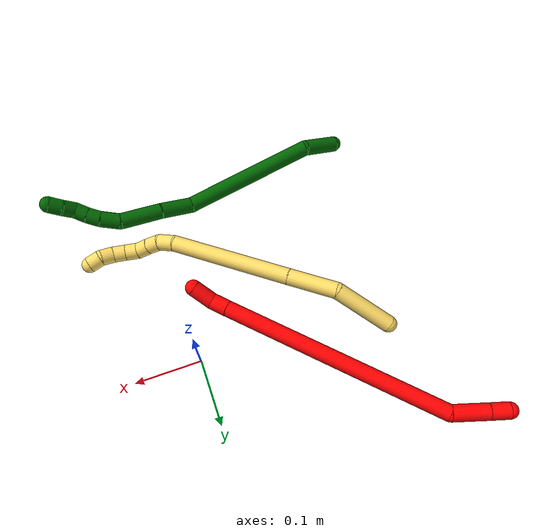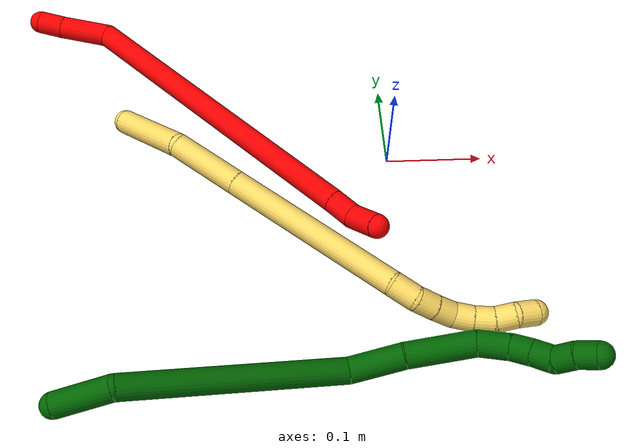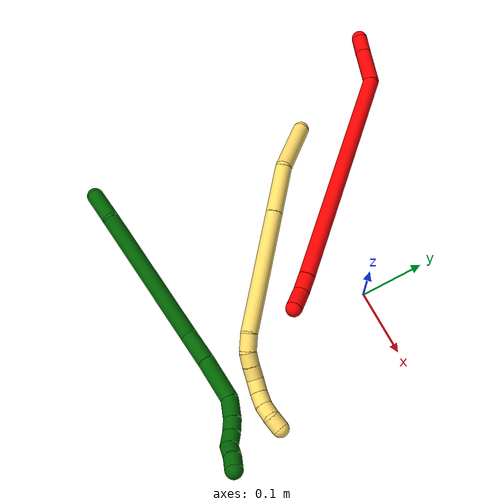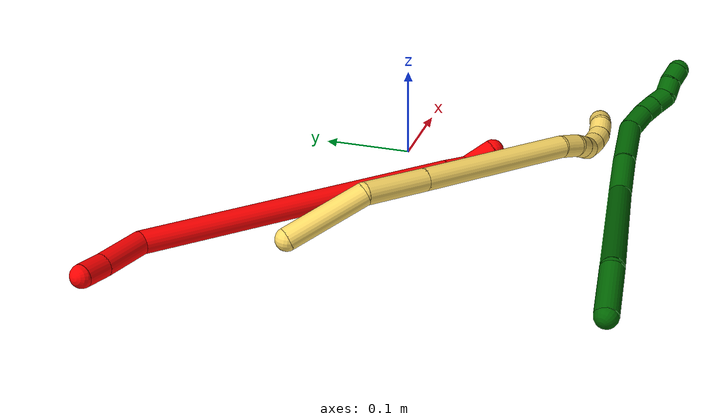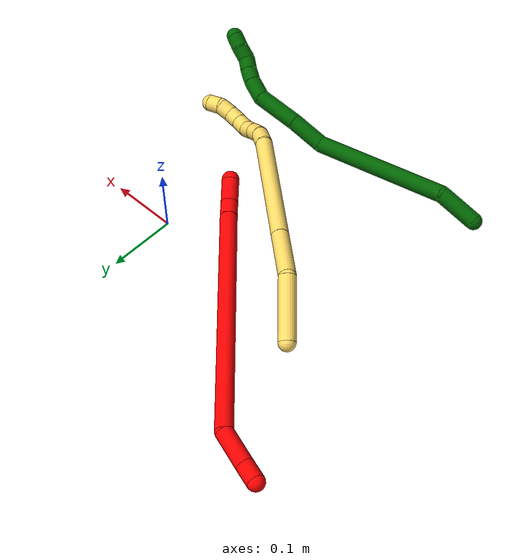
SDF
<sdf version="1.7">
 <world name="default">
  <model name="2">
   <static>0</static>
   <link name="2">
    <collision name="collision-cylinder-e_1_1_4">
     <pose>0.003169 0.000118 -0.013701 -3.133 0.227264 -3.06637</pose>
     <geometry><cylinder><radius>0.0125</radius><length>0.028126</length></cylinder></geometry>
     <surface>
      <friction><ode><mu>1.16</mu><mu2>1.16</mu2><slip1>0</slip1><slip2>0</slip2></ode></friction>
      <contact><ode><kp>1e+06</kp><kd>1</kd><max_vel>0</max_vel><min_depth>0.001</min_depth></ode></contact>
     </surface>
    </collision>
    <visual name="visual-cylinder-e_1_1_4">
     <pose>0.003169 0.000118 -0.013701 -3.133 0.227264 -3.06637</pose>
     <geometry><cylinder><radius>0.0125</radius><length>0.028126</length></cylinder></geometry>
     <material><ambient>1 0 0 1</ambient></material>
    </visual>
    <collision name="collision-cylinder-e_2_4_5">
     <pose>0.014129 0.001099 -0.053923 -3.10905 0.285614 -2.91617</pose>
     <geometry><cylinder><radius>0.0125</radius><length>0.055311</length></cylinder></geometry>
     <surface>
      <friction><ode><mu>1.16</mu><mu2>1.16</mu2><slip1>0</slip1><slip2>0</slip2></ode></friction>
      <contact><ode><kp>1e+06</kp><kd>1</kd><max_vel>0</max_vel><min_depth>0.001</min_depth></ode></contact>
     </surface>
    </collision>
    <visual name="visual-cylinder-e_2_4_5">
     <pose>0.014129 0.001099 -0.053923 -3.10905 0.285614 -2.91617</pose>
     <geometry><cylinder><radius>0.0125</radius><length>0.055311</length></cylinder></geometry>
     <material><ambient>1 0 0 1</ambient></material>
    </visual>
    <collision name="collision-cylinder-e_3_5_6">
     <pose>0.091714 -0.075022 -0.223837 2.64888 0.405112 1.36969</pose>
     <geometry><cylinder><radius>0.0125</radius><length>0.35417</length></cylinder></geometry>
     <surface>
      <friction><ode><mu>1.16</mu><mu2>1.16</mu2><slip1>0</slip1><slip2>0</slip2></ode></friction>
      <contact><ode><kp>1e+06</kp><kd>1</kd><max_vel>0</max_vel><min_depth>0.001</min_depth></ode></contact>
     </surface>
    </collision>
    <visual name="visual-cylinder-e_3_5_6">
     <pose>0.091714 -0.075022 -0.223837 2.64888 0.405112 1.36969</pose>
     <geometry><cylinder><radius>0.0125</radius><length>0.35417</length></cylinder></geometry>
     <material><ambient>1 0 0 1</ambient></material>
    </visual>
    <collision name="collision-cylinder-e_4_6_7">
     <pose>0.16664 -0.158325 -0.378242 2.62062 0.384217 1.26081</pose>
     <geometry><cylinder><radius>0.0125</radius><length>0.027388</length></cylinder></geometry>
     <surface>
      <friction><ode><mu>1.16</mu><mu2>1.16</mu2><slip1>0</slip1><slip2>0</slip2></ode></friction>
      <contact><ode><kp>1e+06</kp><kd>1</kd><max_vel>0</max_vel><min_depth>0.001</min_depth></ode></contact>
     </surface>
    </collision>
    <visual name="visual-cylinder-e_4_6_7">
     <pose>0.16664 -0.158325 -0.378242 2.62062 0.384217 1.26081</pose>
     <geometry><cylinder><radius>0.0125</radius><length>0.027388</length></cylinder></geometry>
     <material><ambient>1 0 0 1</ambient></material>
    </visual>
    <collision name="collision-cylinder-e_5_7_2">
     <pose>0.184693 -0.169952 -0.399799 2.67531 0.830397 2.15339</pose>
     <geometry><cylinder><radius>0.0125</radius><length>0.035004</length></cylinder></geometry>
     <surface>
      <friction><ode><mu>1.16</mu><mu2>1.16</mu2><slip1>0</slip1><slip2>0</slip2></ode></friction>
      <contact><ode><kp>1e+06</kp><kd>1</kd><max_vel>0</max_vel><min_depth>0.001</min_depth></ode></contact>
     </surface>
    </collision>
    <visual name="visual-cylinder-e_5_7_2">
     <pose>0.184693 -0.169952 -0.399799 2.67531 0.830397 2.15339</pose>
     <geometry><cylinder><radius>0.0125</radius><length>0.035004</length></cylinder></geometry>
     <material><ambient>1 0 0 1</ambient></material>
    </visual>
    <collision name="collision-sphere-2">
     <pose>0.197613 -0.17526 -0.410345 0 -0 0</pose>
     <geometry><sphere><radius>0.0125</radius></sphere></geometry>
     <surface>
      <friction><ode><mu>1.16</mu><mu2>1.16</mu2><slip1>0</slip1><slip2>0</slip2></ode></friction>
      <contact><ode><kp>1e+06</kp><kd>1</kd><max_vel>0</max_vel><min_depth>0.001</min_depth></ode></contact>
     </surface>
    </collision>
    <visual name="visual-sphere-2">
     <pose>0.197613 -0.17526 -0.410345 0 -0 0</pose>
     <geometry><sphere><radius>0.0125</radius></sphere></geometry>
     <material><ambient>1 0 0 1</ambient></material>
    </visual>
    <collision name="collision-sphere-7">
     <pose>0.171773 -0.164644 -0.389253 0 -0 0</pose>
     <geometry><sphere><radius>0.0125</radius></sphere></geometry>
     <surface>
      <friction><ode><mu>1.16</mu><mu2>1.16</mu2><slip1>0</slip1><slip2>0</slip2></ode></friction>
      <contact><ode><kp>1e+06</kp><kd>1</kd><max_vel>0</max_vel><min_depth>0.001</min_depth></ode></contact>
     </surface>
    </collision>
    <visual name="visual-sphere-7">
     <pose>0.171773 -0.164644 -0.389253 0 -0 0</pose>
     <geometry><sphere><radius>0.0125</radius></sphere></geometry>
     <material><ambient>1 0 0 1</ambient></material>
    </visual>
    <collision name="collision-sphere-6">
     <pose>0.161507 -0.152006 -0.36723 0 -0 0</pose>
     <geometry><sphere><radius>0.0125</radius></sphere></geometry>
     <surface>
      <friction><ode><mu>1.16</mu><mu2>1.16</mu2><slip1>0</slip1><slip2>0</slip2></ode></friction>
      <contact><ode><kp>1e+06</kp><kd>1</kd><max_vel>0</max_vel><min_depth>0.001</min_depth></ode></contact>
     </surface>
    </collision>
    <visual name="visual-sphere-6">
     <pose>0.161507 -0.152006 -0.36723 0 -0 0</pose>
     <geometry><sphere><radius>0.0125</radius></sphere></geometry>
     <material><ambient>1 0 0 1</ambient></material>
    </visual>
    <collision name="collision-sphere-5">
     <pose>0.021921 0.001962 -0.080444 0 -0 0</pose>
     <geometry><sphere><radius>0.0125</radius></sphere></geometry>
     <surface>
      <friction><ode><mu>1.16</mu><mu2>1.16</mu2><slip1>0</slip1><slip2>0</slip2></ode></friction>
      <contact><ode><kp>1e+06</kp><kd>1</kd><max_vel>0</max_vel><min_depth>0.001</min_depth></ode></contact>
     </surface>
    </collision>
    <visual name="visual-sphere-5">
     <pose>0.021921 0.001962 -0.080444 0 -0 0</pose>
     <geometry><sphere><radius>0.0125</radius></sphere></geometry>
     <material><ambient>1 0 0 1</ambient></material>
    </visual>
    <collision name="collision-sphere-1">
     <geometry><sphere><radius>0.0125</radius></sphere></geometry>
     <surface>
      <friction><ode><mu>1.16</mu><mu2>1.16</mu2><slip1>0</slip1><slip2>0</slip2></ode></friction>
      <contact><ode><kp>1e+06</kp><kd>1</kd><max_vel>0</max_vel><min_depth>0.001</min_depth></ode></contact>
     </surface>
    </collision>
    <visual name="visual-sphere-1">
     <geometry><sphere><radius>0.0125</radius></sphere></geometry>
     <material><ambient>1 0 0 1</ambient></material>
    </visual>
    <collision name="collision-sphere-4">
     <pose>0.006337 0.000235 -0.027402 0 -0 0</pose>
     <geometry><sphere><radius>0.0125</radius></sphere></geometry>
     <surface>
      <friction><ode><mu>1.16</mu><mu2>1.16</mu2><slip1>0</slip1><slip2>0</slip2></ode></friction>
      <contact><ode><kp>1e+06</kp><kd>1</kd><max_vel>0</max_vel><min_depth>0.001</min_depth></ode></contact>
     </surface>
    </collision>
    <visual name="visual-sphere-4">
     <pose>0.006337 0.000235 -0.027402 0 -0 0</pose>
     <geometry><sphere><radius>0.0125</radius></sphere></geometry>
     <material><ambient>1 0 0 1</ambient></material>
    </visual>
    <inertial>
     <pose>0.088764 -0.073583 -0.213997 0 -0 0</pose>
     <mass>0.5</mass>
     <inertia>
      <ixx>0.004026</ixx>
      <ixy>0</ixy>
      <ixz>0</ixz>
      <iyy>0.003381</iyy>
      <iyz>0</iyz>
      <izz>0.000111</izz>
     </inertia>
    </inertial>
   </link>
   <pose>-0.387417 0.21808 0.014003 0.853855 -1.14232 -1.13602</pose>
  </model>
  <model name="5">
   <static>0</static>
   <link name="5">
    <collision name="collision-cylinder-e_1_1_4">
     <pose>0.039123 -0.011174 0.021916 0.471498 1.00947 0.263881</pose>
     <geometry><cylinder><radius>0.0125</radius><length>0.092428</length></cylinder></geometry>
     <surface>
      <friction><ode><mu>1.16</mu><mu2>1.16</mu2><slip1>0</slip1><slip2>0</slip2></ode></friction>
      <contact><ode><kp>1e+06</kp><kd>1</kd><max_vel>0</max_vel><min_depth>0.001</min_depth></ode></contact>
     </surface>
    </collision>
    <visual name="visual-cylinder-e_1_1_4">
     <pose>0.039123 -0.011174 0.021916 0.471498 1.00947 0.263881</pose>
     <geometry><cylinder><radius>0.0125</radius><length>0.092428</length></cylinder></geometry>
     <material><ambient>1 0.858824 0.4 1</ambient></material>
    </visual>
    <collision name="collision-cylinder-e_2_4_5">
     <pose>0.115184 -0.027562 0.046602 1.08239 1.4123 0.947379</pose>
     <geometry><cylinder><radius>0.0125</radius><length>0.074815</length></cylinder></geometry>
     <surface>
      <friction><ode><mu>1.16</mu><mu2>1.16</mu2><slip1>0</slip1><slip2>0</slip2></ode></friction>
      <contact><ode><kp>1e+06</kp><kd>1</kd><max_vel>0</max_vel><min_depth>0.001</min_depth></ode></contact>
     </surface>
    </collision>
    <visual name="visual-cylinder-e_2_4_5">
     <pose>0.115184 -0.027562 0.046602 1.08239 1.4123 0.947379</pose>
     <geometry><cylinder><radius>0.0125</radius><length>0.074815</length></cylinder></geometry>
     <material><ambient>1 0.858824 0.4 1</ambient></material>
    </visual>
    <collision name="collision-cylinder-e_3_5_6">
     <pose>0.24386 -0.045813 0.057024 1.0401 1.40747 0.904747</pose>
     <geometry><cylinder><radius>0.0125</radius><length>0.18595</length></cylinder></geometry>
     <surface>
      <friction><ode><mu>1.16</mu><mu2>1.16</mu2><slip1>0</slip1><slip2>0</slip2></ode></friction>
      <contact><ode><kp>1e+06</kp><kd>1</kd><max_vel>0</max_vel><min_depth>0.001</min_depth></ode></contact>
     </surface>
    </collision>
    <visual name="visual-cylinder-e_3_5_6">
     <pose>0.24386 -0.045813 0.057024 1.0401 1.40747 0.904747</pose>
     <geometry><cylinder><radius>0.0125</radius><length>0.18595</length></cylinder></geometry>
     <material><ambient>1 0.858824 0.4 1</ambient></material>
    </visual>
    <collision name="collision-cylinder-e_4_6_7">
     <pose>0.348438 -0.059185 0.063266 2.90931 1.45848 2.88193</pose>
     <geometry><cylinder><radius>0.0125</radius><length>0.025842</length></cylinder></geometry>
     <surface>
      <friction><ode><mu>1.16</mu><mu2>1.16</mu2><slip1>0</slip1><slip2>0</slip2></ode></friction>
      <contact><ode><kp>1e+06</kp><kd>1</kd><max_vel>0</max_vel><min_depth>0.001</min_depth></ode></contact>
     </surface>
    </collision>
    <visual name="visual-cylinder-e_4_6_7">
     <pose>0.348438 -0.059185 0.063266 2.90931 1.45848 2.88193</pose>
     <geometry><cylinder><radius>0.0125</radius><length>0.025842</length></cylinder></geometry>
     <material><ambient>1 0.858824 0.4 1</ambient></material>
    </visual>
    <collision name="collision-cylinder-e_5_7_8">
     <pose>0.370527 -0.056984 0.058476 -2.49837 1.14229 -2.18492</pose>
     <geometry><cylinder><radius>0.0125</radius><length>0.020337</length></cylinder></geometry>
     <surface>
      <friction><ode><mu>1.16</mu><mu2>1.16</mu2><slip1>0</slip1><slip2>0</slip2></ode></friction>
      <contact><ode><kp>1e+06</kp><kd>1</kd><max_vel>0</max_vel><min_depth>0.001</min_depth></ode></contact>
     </surface>
    </collision>
    <visual name="visual-cylinder-e_5_7_8">
     <pose>0.370527 -0.056984 0.058476 -2.49837 1.14229 -2.18492</pose>
     <geometry><cylinder><radius>0.0125</radius><length>0.020337</length></cylinder></geometry>
     <material><ambient>1 0.858824 0.4 1</ambient></material>
    </visual>
    <collision name="collision-cylinder-e_6_8_9">
     <pose>0.388732 -0.051276 0.051533 -2.41386 1.08131 -2.01098</pose>
     <geometry><cylinder><radius>0.0125</radius><length>0.020296</length></cylinder></geometry>
     <surface>
      <friction><ode><mu>1.16</mu><mu2>1.16</mu2><slip1>0</slip1><slip2>0</slip2></ode></friction>
      <contact><ode><kp>1e+06</kp><kd>1</kd><max_vel>0</max_vel><min_depth>0.001</min_depth></ode></contact>
     </surface>
    </collision>
    <visual name="visual-cylinder-e_6_8_9">
     <pose>0.388732 -0.051276 0.051533 -2.41386 1.08131 -2.01098</pose>
     <geometry><cylinder><radius>0.0125</radius><length>0.020296</length></cylinder></geometry>
     <material><ambient>1 0.858824 0.4 1</ambient></material>
    </visual>
    <collision name="collision-cylinder-e_7_9_10">
     <pose>0.407284 -0.044812 0.048357 -1.45359 1.23828 -1.12956</pose>
     <geometry><cylinder><radius>0.0125</radius><length>0.020301</length></cylinder></geometry>
     <surface>
      <friction><ode><mu>1.16</mu><mu2>1.16</mu2><slip1>0</slip1><slip2>0</slip2></ode></friction>
      <contact><ode><kp>1e+06</kp><kd>1</kd><max_vel>0</max_vel><min_depth>0.001</min_depth></ode></contact>
     </surface>
    </collision>
    <visual name="visual-cylinder-e_7_9_10">
     <pose>0.407284 -0.044812 0.048357 -1.45359 1.23828 -1.12956</pose>
     <geometry><cylinder><radius>0.0125</radius><length>0.020301</length></cylinder></geometry>
     <material><ambient>1 0.858824 0.4 1</ambient></material>
    </visual>
    <collision name="collision-cylinder-e_8_10_11">
     <pose>0.425875 -0.037474 0.050382 -1.18636 1.11903 -0.799023</pose>
     <geometry><cylinder><radius>0.0125</radius><length>0.020001</length></cylinder></geometry>
     <surface>
      <friction><ode><mu>1.16</mu><mu2>1.16</mu2><slip1>0</slip1><slip2>0</slip2></ode></friction>
      <contact><ode><kp>1e+06</kp><kd>1</kd><max_vel>0</max_vel><min_depth>0.001</min_depth></ode></contact>
     </surface>
    </collision>
    <visual name="visual-cylinder-e_8_10_11">
     <pose>0.425875 -0.037474 0.050382 -1.18636 1.11903 -0.799023</pose>
     <geometry><cylinder><radius>0.0125</radius><length>0.020001</length></cylinder></geometry>
     <material><ambient>1 0.858824 0.4 1</ambient></material>
    </visual>
    <collision name="collision-cylinder-e_9_11_12">
     <pose>0.44239 -0.02758 0.055111 -1.08442 0.849203 -0.531826</pose>
     <geometry><cylinder><radius>0.0125</radius><length>0.020026</length></cylinder></geometry>
     <surface>
      <friction><ode><mu>1.16</mu><mu2>1.16</mu2><slip1>0</slip1><slip2>0</slip2></ode></friction>
      <contact><ode><kp>1e+06</kp><kd>1</kd><max_vel>0</max_vel><min_depth>0.001</min_depth></ode></contact>
     </surface>
    </collision>
    <visual name="visual-cylinder-e_9_11_12">
     <pose>0.44239 -0.02758 0.055111 -1.08442 0.849203 -0.531826</pose>
     <geometry><cylinder><radius>0.0125</radius><length>0.020026</length></cylinder></geometry>
     <material><ambient>1 0.858824 0.4 1</ambient></material>
    </visual>
    <collision name="collision-cylinder-e_10_12_2">
     <pose>0.45729 -0.015045 0.057308 -1.70386 0.830437 -0.933356</pose>
     <geometry><cylinder><radius>0.0125</radius><length>0.020003</length></cylinder></geometry>
     <surface>
      <friction><ode><mu>1.16</mu><mu2>1.16</mu2><slip1>0</slip1><slip2>0</slip2></ode></friction>
      <contact><ode><kp>1e+06</kp><kd>1</kd><max_vel>0</max_vel><min_depth>0.001</min_depth></ode></contact>
     </surface>
    </collision>
    <visual name="visual-cylinder-e_10_12_2">
     <pose>0.45729 -0.015045 0.057308 -1.70386 0.830437 -0.933356</pose>
     <geometry><cylinder><radius>0.0125</radius><length>0.020003</length></cylinder></geometry>
     <material><ambient>1 0.858824 0.4 1</ambient></material>
    </visual>
    <collision name="collision-sphere-2">
     <pose>0.464674 -0.008358 0.056412 0 -0 0</pose>
     <geometry><sphere><radius>0.0125</radius></sphere></geometry>
     <surface>
      <friction><ode><mu>1.16</mu><mu2>1.16</mu2><slip1>0</slip1><slip2>0</slip2></ode></friction>
      <contact><ode><kp>1e+06</kp><kd>1</kd><max_vel>0</max_vel><min_depth>0.001</min_depth></ode></contact>
     </surface>
    </collision>
    <visual name="visual-sphere-2">
     <pose>0.464674 -0.008358 0.056412 0 -0 0</pose>
     <geometry><sphere><radius>0.0125</radius></sphere></geometry>
     <material><ambient>1 0.858824 0.4 1</ambient></material>
    </visual>
    <collision name="collision-sphere-12">
     <pose>0.449907 -0.021732 0.058203 0 -0 0</pose>
     <geometry><sphere><radius>0.0125</radius></sphere></geometry>
     <surface>
      <friction><ode><mu>1.16</mu><mu2>1.16</mu2><slip1>0</slip1><slip2>0</slip2></ode></friction>
      <contact><ode><kp>1e+06</kp><kd>1</kd><max_vel>0</max_vel><min_depth>0.001</min_depth></ode></contact>
     </surface>
    </collision>
    <visual name="visual-sphere-12">
     <pose>0.449907 -0.021732 0.058203 0 -0 0</pose>
     <geometry><sphere><radius>0.0125</radius></sphere></geometry>
     <material><ambient>1 0.858824 0.4 1</ambient></material>
    </visual>
    <collision name="collision-sphere-11">
     <pose>0.434872 -0.033427 0.052019 0 -0 0</pose>
     <geometry><sphere><radius>0.0125</radius></sphere></geometry>
     <surface>
      <friction><ode><mu>1.16</mu><mu2>1.16</mu2><slip1>0</slip1><slip2>0</slip2></ode></friction>
      <contact><ode><kp>1e+06</kp><kd>1</kd><max_vel>0</max_vel><min_depth>0.001</min_depth></ode></contact>
     </surface>
    </collision>
    <visual name="visual-sphere-11">
     <pose>0.434872 -0.033427 0.052019 0 -0 0</pose>
     <geometry><sphere><radius>0.0125</radius></sphere></geometry>
     <material><ambient>1 0.858824 0.4 1</ambient></material>
    </visual>
    <collision name="collision-sphere-10">
     <pose>0.416878 -0.041521 0.048745 0 -0 0</pose>
     <geometry><sphere><radius>0.0125</radius></sphere></geometry>
     <surface>
      <friction><ode><mu>1.16</mu><mu2>1.16</mu2><slip1>0</slip1><slip2>0</slip2></ode></friction>
      <contact><ode><kp>1e+06</kp><kd>1</kd><max_vel>0</max_vel><min_depth>0.001</min_depth></ode></contact>
     </surface>
    </collision>
    <visual name="visual-sphere-10">
     <pose>0.416878 -0.041521 0.048745 0 -0 0</pose>
     <geometry><sphere><radius>0.0125</radius></sphere></geometry>
     <material><ambient>1 0.858824 0.4 1</ambient></material>
    </visual>
    <collision name="collision-sphere-9">
     <pose>0.397689 -0.048102 0.04797 0 -0 0</pose>
     <geometry><sphere><radius>0.0125</radius></sphere></geometry>
     <surface>
      <friction><ode><mu>1.16</mu><mu2>1.16</mu2><slip1>0</slip1><slip2>0</slip2></ode></friction>
      <contact><ode><kp>1e+06</kp><kd>1</kd><max_vel>0</max_vel><min_depth>0.001</min_depth></ode></contact>
     </surface>
    </collision>
    <visual name="visual-sphere-9">
     <pose>0.397689 -0.048102 0.04797 0 -0 0</pose>
     <geometry><sphere><radius>0.0125</radius></sphere></geometry>
     <material><ambient>1 0.858824 0.4 1</ambient></material>
    </visual>
    <collision name="collision-sphere-4">
     <pose>0.078245 -0.022348 0.043832 0 -0 0</pose>
     <geometry><sphere><radius>0.0125</radius></sphere></geometry>
     <surface>
      <friction><ode><mu>1.16</mu><mu2>1.16</mu2><slip1>0</slip1><slip2>0</slip2></ode></friction>
      <contact><ode><kp>1e+06</kp><kd>1</kd><max_vel>0</max_vel><min_depth>0.001</min_depth></ode></contact>
     </surface>
    </collision>
    <visual name="visual-sphere-4">
     <pose>0.078245 -0.022348 0.043832 0 -0 0</pose>
     <geometry><sphere><radius>0.0125</radius></sphere></geometry>
     <material><ambient>1 0.858824 0.4 1</ambient></material>
    </visual>
    <collision name="collision-sphere-1">
     <geometry><sphere><radius>0.0125</radius></sphere></geometry>
     <surface>
      <friction><ode><mu>1.16</mu><mu2>1.16</mu2><slip1>0</slip1><slip2>0</slip2></ode></friction>
      <contact><ode><kp>1e+06</kp><kd>1</kd><max_vel>0</max_vel><min_depth>0.001</min_depth></ode></contact>
     </surface>
    </collision>
    <visual name="visual-sphere-1">
     <geometry><sphere><radius>0.0125</radius></sphere></geometry>
     <material><ambient>1 0.858824 0.4 1</ambient></material>
    </visual>
    <collision name="collision-sphere-8">
     <pose>0.379776 -0.05445 0.055095 0 -0 0</pose>
     <geometry><sphere><radius>0.0125</radius></sphere></geometry>
     <surface>
      <friction><ode><mu>1.16</mu><mu2>1.16</mu2><slip1>0</slip1><slip2>0</slip2></ode></friction>
      <contact><ode><kp>1e+06</kp><kd>1</kd><max_vel>0</max_vel><min_depth>0.001</min_depth></ode></contact>
     </surface>
    </collision>
    <visual name="visual-sphere-8">
     <pose>0.379776 -0.05445 0.055095 0 -0 0</pose>
     <geometry><sphere><radius>0.0125</radius></sphere></geometry>
     <material><ambient>1 0.858824 0.4 1</ambient></material>
    </visual>
    <collision name="collision-sphere-5">
     <pose>0.152123 -0.032775 0.049373 0 -0 0</pose>
     <geometry><sphere><radius>0.0125</radius></sphere></geometry>
     <surface>
      <friction><ode><mu>1.16</mu><mu2>1.16</mu2><slip1>0</slip1><slip2>0</slip2></ode></friction>
      <contact><ode><kp>1e+06</kp><kd>1</kd><max_vel>0</max_vel><min_depth>0.001</min_depth></ode></contact>
     </surface>
    </collision>
    <visual name="visual-sphere-5">
     <pose>0.152123 -0.032775 0.049373 0 -0 0</pose>
     <geometry><sphere><radius>0.0125</radius></sphere></geometry>
     <material><ambient>1 0.858824 0.4 1</ambient></material>
    </visual>
    <collision name="collision-sphere-6">
     <pose>0.335598 -0.058852 0.064676 0 -0 0</pose>
     <geometry><sphere><radius>0.0125</radius></sphere></geometry>
     <surface>
      <friction><ode><mu>1.16</mu><mu2>1.16</mu2><slip1>0</slip1><slip2>0</slip2></ode></friction>
      <contact><ode><kp>1e+06</kp><kd>1</kd><max_vel>0</max_vel><min_depth>0.001</min_depth></ode></contact>
     </surface>
    </collision>
    <visual name="visual-sphere-6">
     <pose>0.335598 -0.058852 0.064676 0 -0 0</pose>
     <geometry><sphere><radius>0.0125</radius></sphere></geometry>
     <material><ambient>1 0.858824 0.4 1</ambient></material>
    </visual>
    <collision name="collision-sphere-7">
     <pose>0.361278 -0.059518 0.061857 0 -0 0</pose>
     <geometry><sphere><radius>0.0125</radius></sphere></geometry>
     <surface>
      <friction><ode><mu>1.16</mu><mu2>1.16</mu2><slip1>0</slip1><slip2>0</slip2></ode></friction>
      <contact><ode><kp>1e+06</kp><kd>1</kd><max_vel>0</max_vel><min_depth>0.001</min_depth></ode></contact>
     </surface>
    </collision>
    <visual name="visual-sphere-7">
     <pose>0.361278 -0.059518 0.061857 0 -0 0</pose>
     <geometry><sphere><radius>0.0125</radius></sphere></geometry>
     <material><ambient>1 0.858824 0.4 1</ambient></material>
    </visual>
    <inertial>
     <pose>0.233603 -0.035711 0.048451 0 -0 0</pose>
     <mass>0.5</mass>
     <inertia>
      <ixx>0.000212</ixx>
      <ixy>0</ixy>
      <ixz>0</ixz>
      <iyy>0.000726</iyy>
      <iyz>0</iyz>
      <izz>-0.000543</izz>
     </inertia>
    </inertial>
   </link>
   <pose>-0.277729 0.045558 0.024036 0.036452 0.140265 -0.540423</pose>
  </model>
  <model name="6">
   <static>0</static>
   <link name="6">
    <collision name="collision-cylinder-e_1_1_4">
     <pose>0.003212 -0.009097 -0.02756 2.82278 0.110236 0.661183</pose>
     <geometry><cylinder><radius>0.0125</radius><length>0.058399</length></cylinder></geometry>
     <surface>
      <friction><ode><mu>1.16</mu><mu2>1.16</mu2><slip1>0</slip1><slip2>0</slip2></ode></friction>
      <contact><ode><kp>1e+06</kp><kd>1</kd><max_vel>0</max_vel><min_depth>0.001</min_depth></ode></contact>
     </surface>
    </collision>
    <visual name="visual-cylinder-e_1_1_4">
     <pose>0.003212 -0.009097 -0.02756 2.82278 0.110236 0.661183</pose>
     <geometry><cylinder><radius>0.0125</radius><length>0.058399</length></cylinder></geometry>
     <material><ambient>0 0.392157 0.003922 1</ambient></material>
    </visual>
    <collision name="collision-cylinder-e_2_4_5">
     <pose>0.062259 -0.033239 -0.143964 2.97383 0.554732 2.5673</pose>
     <geometry><cylinder><radius>0.0125</radius><length>0.212011</length></cylinder></geometry>
     <surface>
      <friction><ode><mu>1.16</mu><mu2>1.16</mu2><slip1>0</slip1><slip2>0</slip2></ode></friction>
      <contact><ode><kp>1e+06</kp><kd>1</kd><max_vel>0</max_vel><min_depth>0.001</min_depth></ode></contact>
     </surface>
    </collision>
    <visual name="visual-cylinder-e_2_4_5">
     <pose>0.062259 -0.033239 -0.143964 2.97383 0.554732 2.5673</pose>
     <geometry><cylinder><radius>0.0125</radius><length>0.212011</length></cylinder></geometry>
     <material><ambient>0 0.392157 0.003922 1</ambient></material>
    </visual>
    <collision name="collision-cylinder-e_3_5_6">
     <pose>0.121709 -0.056186 -0.257864 2.83611 0.136741 0.837082</pose>
     <geometry><cylinder><radius>0.0125</radius><length>0.053039</length></cylinder></geometry>
     <surface>
      <friction><ode><mu>1.16</mu><mu2>1.16</mu2><slip1>0</slip1><slip2>0</slip2></ode></friction>
      <contact><ode><kp>1e+06</kp><kd>1</kd><max_vel>0</max_vel><min_depth>0.001</min_depth></ode></contact>
     </surface>
    </collision>
    <visual name="visual-cylinder-e_3_5_6">
     <pose>0.121709 -0.056186 -0.257864 2.83611 0.136741 0.837082</pose>
     <geometry><cylinder><radius>0.0125</radius><length>0.053039</length></cylinder></geometry>
     <material><ambient>0 0.392157 0.003922 1</ambient></material>
    </visual>
    <collision name="collision-cylinder-e_4_6_7">
     <pose>0.133743 -0.071469 -0.313832 2.9072 0.258965 1.67136</pose>
     <geometry><cylinder><radius>0.0125</radius><length>0.065755</length></cylinder></geometry>
     <surface>
      <friction><ode><mu>1.16</mu><mu2>1.16</mu2><slip1>0</slip1><slip2>0</slip2></ode></friction>
      <contact><ode><kp>1e+06</kp><kd>1</kd><max_vel>0</max_vel><min_depth>0.001</min_depth></ode></contact>
     </surface>
    </collision>
    <visual name="visual-cylinder-e_4_6_7">
     <pose>0.133743 -0.071469 -0.313832 2.9072 0.258965 1.67136</pose>
     <geometry><cylinder><radius>0.0125</radius><length>0.065755</length></cylinder></geometry>
     <material><ambient>0 0.392157 0.003922 1</ambient></material>
    </visual>
    <collision name="collision-cylinder-e_5_7_8">
     <pose>0.1423 -0.077558 -0.35997 -3.05696 0.008953 -0.210667</pose>
     <geometry><cylinder><radius>0.0125</radius><length>0.030563</length></cylinder></geometry>
     <surface>
      <friction><ode><mu>1.16</mu><mu2>1.16</mu2><slip1>0</slip1><slip2>0</slip2></ode></friction>
      <contact><ode><kp>1e+06</kp><kd>1</kd><max_vel>0</max_vel><min_depth>0.001</min_depth></ode></contact>
     </surface>
    </collision>
    <visual name="visual-cylinder-e_5_7_8">
     <pose>0.1423 -0.077558 -0.35997 -3.05696 0.008953 -0.210667</pose>
     <geometry><cylinder><radius>0.0125</radius><length>0.030563</length></cylinder></geometry>
     <material><ambient>0 0.392157 0.003922 1</ambient></material>
    </visual>
    <collision name="collision-cylinder-e_6_8_9">
     <pose>0.141419 -0.073989 -0.384937 -2.91193 -0.101311 0.82827</pose>
     <geometry><cylinder><radius>0.0125</radius><length>0.020112</length></cylinder></geometry>
     <surface>
      <friction><ode><mu>1.16</mu><mu2>1.16</mu2><slip1>0</slip1><slip2>0</slip2></ode></friction>
      <contact><ode><kp>1e+06</kp><kd>1</kd><max_vel>0</max_vel><min_depth>0.001</min_depth></ode></contact>
     </surface>
    </collision>
    <visual name="visual-cylinder-e_6_8_9">
     <pose>0.141419 -0.073989 -0.384937 -2.91193 -0.101311 0.82827</pose>
     <geometry><cylinder><radius>0.0125</radius><length>0.020112</length></cylinder></geometry>
     <material><ambient>0 0.392157 0.003922 1</ambient></material>
    </visual>
    <collision name="collision-cylinder-e_7_9_10">
     <pose>0.138507 -0.068819 -0.404084 -2.84317 -0.190326 1.13146</pose>
     <geometry><cylinder><radius>0.0125</radius><length>0.020042</length></cylinder></geometry>
     <surface>
      <friction><ode><mu>1.16</mu><mu2>1.16</mu2><slip1>0</slip1><slip2>0</slip2></ode></friction>
      <contact><ode><kp>1e+06</kp><kd>1</kd><max_vel>0</max_vel><min_depth>0.001</min_depth></ode></contact>
     </surface>
    </collision>
    <visual name="visual-cylinder-e_7_9_10">
     <pose>0.138507 -0.068819 -0.404084 -2.84317 -0.190326 1.13146</pose>
     <geometry><cylinder><radius>0.0125</radius><length>0.020042</length></cylinder></geometry>
     <material><ambient>0 0.392157 0.003922 1</ambient></material>
    </visual>
    <collision name="collision-cylinder-e_8_10_11">
     <pose>0.134187 -0.068122 -0.422955 2.9136 -0.244456 -1.64112</pose>
     <geometry><cylinder><radius>0.0125</radius><length>0.020031</length></cylinder></geometry>
     <surface>
      <friction><ode><mu>1.16</mu><mu2>1.16</mu2><slip1>0</slip1><slip2>0</slip2></ode></friction>
      <contact><ode><kp>1e+06</kp><kd>1</kd><max_vel>0</max_vel><min_depth>0.001</min_depth></ode></contact>
     </surface>
    </collision>
    <visual name="visual-cylinder-e_8_10_11">
     <pose>0.134187 -0.068122 -0.422955 2.9136 -0.244456 -1.64112</pose>
     <geometry><cylinder><radius>0.0125</radius><length>0.020031</length></cylinder></geometry>
     <material><ambient>0 0.392157 0.003922 1</ambient></material>
    </visual>
    <collision name="collision-cylinder-e_9_11_2">
     <pose>0.129971 -0.070434 -0.442283 3.12987 -0.179724 -3.01164</pose>
     <geometry><cylinder><radius>0.0125</radius><length>0.020049</length></cylinder></geometry>
     <surface>
      <friction><ode><mu>1.16</mu><mu2>1.16</mu2><slip1>0</slip1><slip2>0</slip2></ode></friction>
      <contact><ode><kp>1e+06</kp><kd>1</kd><max_vel>0</max_vel><min_depth>0.001</min_depth></ode></contact>
     </surface>
    </collision>
    <visual name="visual-cylinder-e_9_11_2">
     <pose>0.129971 -0.070434 -0.442283 3.12987 -0.179724 -3.01164</pose>
     <geometry><cylinder><radius>0.0125</radius><length>0.020049</length></cylinder></geometry>
     <material><ambient>0 0.392157 0.003922 1</ambient></material>
    </visual>
    <collision name="collision-sphere-2">
     <pose>0.128179 -0.07055 -0.452146 0 -0 0</pose>
     <geometry><sphere><radius>0.0125</radius></sphere></geometry>
     <surface>
      <friction><ode><mu>1.16</mu><mu2>1.16</mu2><slip1>0</slip1><slip2>0</slip2></ode></friction>
      <contact><ode><kp>1e+06</kp><kd>1</kd><max_vel>0</max_vel><min_depth>0.001</min_depth></ode></contact>
     </surface>
    </collision>
    <visual name="visual-sphere-2">
     <pose>0.128179 -0.07055 -0.452146 0 -0 0</pose>
     <geometry><sphere><radius>0.0125</radius></sphere></geometry>
     <material><ambient>0 0.392157 0.003922 1</ambient></material>
    </visual>
    <collision name="collision-sphere-11">
     <pose>0.131763 -0.070318 -0.432421 0 -0 0</pose>
     <geometry><sphere><radius>0.0125</radius></sphere></geometry>
     <surface>
      <friction><ode><mu>1.16</mu><mu2>1.16</mu2><slip1>0</slip1><slip2>0</slip2></ode></friction>
      <contact><ode><kp>1e+06</kp><kd>1</kd><max_vel>0</max_vel><min_depth>0.001</min_depth></ode></contact>
     </surface>
    </collision>
    <visual name="visual-sphere-11">
     <pose>0.131763 -0.070318 -0.432421 0 -0 0</pose>
     <geometry><sphere><radius>0.0125</radius></sphere></geometry>
     <material><ambient>0 0.392157 0.003922 1</ambient></material>
    </visual>
    <collision name="collision-sphere-10">
     <pose>0.136611 -0.065926 -0.413489 0 -0 0</pose>
     <geometry><sphere><radius>0.0125</radius></sphere></geometry>
     <surface>
      <friction><ode><mu>1.16</mu><mu2>1.16</mu2><slip1>0</slip1><slip2>0</slip2></ode></friction>
      <contact><ode><kp>1e+06</kp><kd>1</kd><max_vel>0</max_vel><min_depth>0.001</min_depth></ode></contact>
     </surface>
    </collision>
    <visual name="visual-sphere-10">
     <pose>0.136611 -0.065926 -0.413489 0 -0 0</pose>
     <geometry><sphere><radius>0.0125</radius></sphere></geometry>
     <material><ambient>0 0.392157 0.003922 1</ambient></material>
    </visual>
    <collision name="collision-sphere-9">
     <pose>0.140402 -0.071712 -0.394679 0 -0 0</pose>
     <geometry><sphere><radius>0.0125</radius></sphere></geometry>
     <surface>
      <friction><ode><mu>1.16</mu><mu2>1.16</mu2><slip1>0</slip1><slip2>0</slip2></ode></friction>
      <contact><ode><kp>1e+06</kp><kd>1</kd><max_vel>0</max_vel><min_depth>0.001</min_depth></ode></contact>
     </surface>
    </collision>
    <visual name="visual-sphere-9">
     <pose>0.140402 -0.071712 -0.394679 0 -0 0</pose>
     <geometry><sphere><radius>0.0125</radius></sphere></geometry>
     <material><ambient>0 0.392157 0.003922 1</ambient></material>
    </visual>
    <collision name="collision-sphere-4">
     <pose>0.006425 -0.018193 -0.05512 0 -0 0</pose>
     <geometry><sphere><radius>0.0125</radius></sphere></geometry>
     <surface>
      <friction><ode><mu>1.16</mu><mu2>1.16</mu2><slip1>0</slip1><slip2>0</slip2></ode></friction>
      <contact><ode><kp>1e+06</kp><kd>1</kd><max_vel>0</max_vel><min_depth>0.001</min_depth></ode></contact>
     </surface>
    </collision>
    <visual name="visual-sphere-4">
     <pose>0.006425 -0.018193 -0.05512 0 -0 0</pose>
     <geometry><sphere><radius>0.0125</radius></sphere></geometry>
     <material><ambient>0 0.392157 0.003922 1</ambient></material>
    </visual>
    <collision name="collision-sphere-1">
     <geometry><sphere><radius>0.0125</radius></sphere></geometry>
     <surface>
      <friction><ode><mu>1.16</mu><mu2>1.16</mu2><slip1>0</slip1><slip2>0</slip2></ode></friction>
      <contact><ode><kp>1e+06</kp><kd>1</kd><max_vel>0</max_vel><min_depth>0.001</min_depth></ode></contact>
     </surface>
    </collision>
    <visual name="visual-sphere-1">
     <geometry><sphere><radius>0.0125</radius></sphere></geometry>
     <material><ambient>0 0.392157 0.003922 1</ambient></material>
    </visual>
    <collision name="collision-sphere-8">
     <pose>0.142436 -0.076267 -0.375196 0 -0 0</pose>
     <geometry><sphere><radius>0.0125</radius></sphere></geometry>
     <surface>
      <friction><ode><mu>1.16</mu><mu2>1.16</mu2><slip1>0</slip1><slip2>0</slip2></ode></friction>
      <contact><ode><kp>1e+06</kp><kd>1</kd><max_vel>0</max_vel><min_depth>0.001</min_depth></ode></contact>
     </surface>
    </collision>
    <visual name="visual-sphere-8">
     <pose>0.142436 -0.076267 -0.375196 0 -0 0</pose>
     <geometry><sphere><radius>0.0125</radius></sphere></geometry>
     <material><ambient>0 0.392157 0.003922 1</ambient></material>
    </visual>
    <collision name="collision-sphere-5">
     <pose>0.118094 -0.048285 -0.232808 0 -0 0</pose>
     <geometry><sphere><radius>0.0125</radius></sphere></geometry>
     <surface>
      <friction><ode><mu>1.16</mu><mu2>1.16</mu2><slip1>0</slip1><slip2>0</slip2></ode></friction>
      <contact><ode><kp>1e+06</kp><kd>1</kd><max_vel>0</max_vel><min_depth>0.001</min_depth></ode></contact>
     </surface>
    </collision>
    <visual name="visual-sphere-5">
     <pose>0.118094 -0.048285 -0.232808 0 -0 0</pose>
     <geometry><sphere><radius>0.0125</radius></sphere></geometry>
     <material><ambient>0 0.392157 0.003922 1</ambient></material>
    </visual>
    <collision name="collision-sphere-6">
     <pose>0.125324 -0.064088 -0.282919 0 -0 0</pose>
     <geometry><sphere><radius>0.0125</radius></sphere></geometry>
     <surface>
      <friction><ode><mu>1.16</mu><mu2>1.16</mu2><slip1>0</slip1><slip2>0</slip2></ode></friction>
      <contact><ode><kp>1e+06</kp><kd>1</kd><max_vel>0</max_vel><min_depth>0.001</min_depth></ode></contact>
     </surface>
    </collision>
    <visual name="visual-sphere-6">
     <pose>0.125324 -0.064088 -0.282919 0 -0 0</pose>
     <geometry><sphere><radius>0.0125</radius></sphere></geometry>
     <material><ambient>0 0.392157 0.003922 1</ambient></material>
    </visual>
    <collision name="collision-sphere-7">
     <pose>0.142163 -0.07885 -0.344744 0 -0 0</pose>
     <geometry><sphere><radius>0.0125</radius></sphere></geometry>
     <surface>
      <friction><ode><mu>1.16</mu><mu2>1.16</mu2><slip1>0</slip1><slip2>0</slip2></ode></friction>
      <contact><ode><kp>1e+06</kp><kd>1</kd><max_vel>0</max_vel><min_depth>0.001</min_depth></ode></contact>
     </surface>
    </collision>
    <visual name="visual-sphere-7">
     <pose>0.142163 -0.07885 -0.344744 0 -0 0</pose>
     <geometry><sphere><radius>0.0125</radius></sphere></geometry>
     <material><ambient>0 0.392157 0.003922 1</ambient></material>
    </visual>
    <inertial>
     <pose>0.087799 -0.046544 -0.221251 0 -0 0</pose>
     <mass>0.5</mass>
     <inertia>
      <ixx>-0.000119</ixx>
      <ixy>0</ixy>
      <ixz>0</ixz>
      <iyy>0.001093</iyy>
      <iyz>0</iyz>
      <izz>-0.000338</izz>
     </inertia>
    </inertial>
   </link>
   <pose>-0.325848 -0.287964 0.021594 -2.16554 1.01097 0.788928</pose>
  </model>
 </world>
</sdf>
